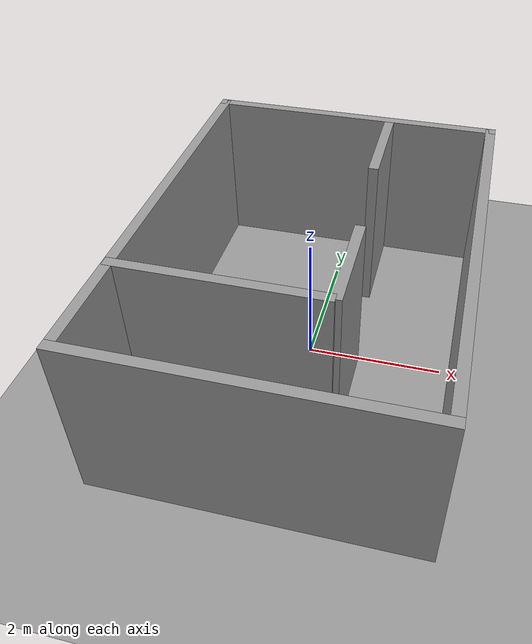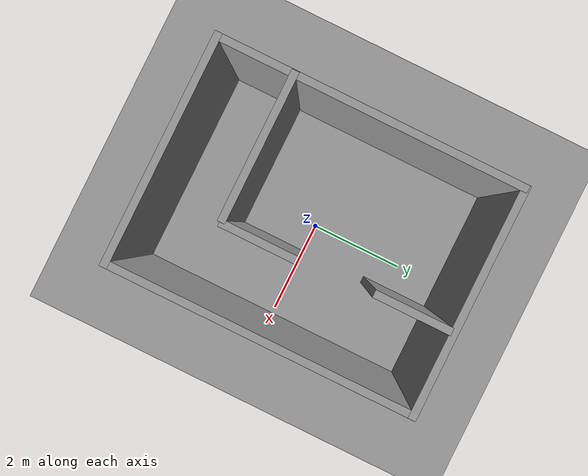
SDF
<sdf version="1.6">
 <world name="default">
  <light name="sun" type="directional">
   <pose>0 0 10 0 -0 0</pose>
   <diffuse>0.8 0.8 0.8 1</diffuse>
   <specular>0.2 0.2 0.2 1</specular>
   <attenuation>
    <range>1000</range>
    <constant>0.9</constant>
    <linear>0.01</linear>
    <quadratic>0.001</quadratic>
   </attenuation>
   <direction>0.5 0.1 -0.9</direction>
  </light>
  <scene><ambient>0.4 0.4 0.4 1</ambient><background>0.7 0.7 0.7 1</background><shadows>1</shadows></scene>
  <physics name="default_physics" default="0" type="ode">
   <max_step_size>0.01</max_step_size>
   <real_time_factor>1</real_time_factor>
   <real_time_update_rate>100</real_time_update_rate>
  </physics>
  <model name="ground_plane_0">
   <static>1</static>
   <link name="link">
    <collision name="collision">
     <geometry><plane><normal>0 0 1</normal><size>100 100</size></plane></geometry>
     <surface><friction><ode><mu>100</mu><mu2>50</mu2></ode></friction></surface>
    </collision>
    <visual name="visual">
     <cast_shadows>0</cast_shadows>
     <geometry><plane><normal>0 0 1</normal><size>100 100</size></plane></geometry>
     <material>
      <script><uri>file://media/materials/scripts/gazebo.material</uri><name>Gazebo/Grey</name></script>
     </material>
    </visual>
    <velocity_decay><linear>0</linear><angular>0</angular></velocity_decay>
   </link>
   <pose>0.5 0 0 0 -0 0</pose>
  </model>
  <gravity>0 0 -9.8</gravity>
  <magnetic_field>6e-06 2.3e-05 -4.2e-05</magnetic_field>
  <atmosphere type="adiabatic"/>
  <audio><device>default</device></audio>
  <spherical_coordinates>
   <surface_model>EARTH_WGS84</surface_model>
   <latitude_deg>0</latitude_deg>
   <longitude_deg>0</longitude_deg>
   <elevation>0</elevation>
   <heading_deg>0</heading_deg>
  </spherical_coordinates>
  <model name="project_1_walls">
   <link name="Wall_0">
    <collision name="Wall_0_Collision">
     <geometry><box><size>4.57 0.15 2.5</size></box></geometry>
     <pose>0 0 1.25 0 -0 0</pose>
    </collision>
    <visual name="Wall_0_Visual">
     <pose>0 0 1.25 0 -0 0</pose>
     <geometry><box><size>4.57 0.15 2.5</size></box></geometry>
     <material>
      <script><uri>file://media/materials/scripts/gazebo.material</uri><name>Gazebo/Grey</name></script>
      <ambient>1 1 1 1</ambient>
     </material>
     <meta><layer>0</layer></meta>
    </visual>
    <pose>0 -3 0 0 -0 0</pose>
   </link>
   <link name="Wall_10">
    <collision name="Wall_10_Collision">
     <geometry><box><size>2.95 0.15 2.5</size></box></geometry>
     <pose>0 0 1.25 0 -0 0</pose>
    </collision>
    <visual name="Wall_10_Visual">
     <pose>0 0 1.25 0 -0 0</pose>
     <geometry><box><size>2.95 0.15 2.5</size></box></geometry>
     <material>
      <script><uri>file://media/materials/scripts/gazebo.material</uri><name>Gazebo/Grey</name></script>
      <ambient>1 1 1 1</ambient>
     </material>
     <meta><layer>0</layer></meta>
    </visual>
    <pose>-0.8 -1.5 0 0 -0 0</pose>
   </link>
   <link name="Wall_12">
    <collision name="Wall_12_Collision">
     <geometry><box><size>1.52 0.15 2.5</size></box></geometry>
     <pose>0 0 1.25 0 -0 0</pose>
    </collision>
    <visual name="Wall_12_Visual">
     <pose>0 0 1.25 0 -0 0</pose>
     <geometry><box><size>1.52 0.15 2.5</size></box></geometry>
     <material>
      <script><uri>file://media/materials/scripts/gazebo.material</uri><name>Gazebo/Grey</name></script>
      <ambient>1 1 1 1</ambient>
     </material>
     <meta><layer>0</layer></meta>
    </visual>
    <pose>0.683677 -0.767863 0 0 -0 1.5708</pose>
   </link>
   <link name="Wall_14">
    <collision name="Wall_14_Collision">
     <geometry><box><size>1.52 0.15 2.5</size></box></geometry>
     <pose>0 0 1.25 0 -0 0</pose>
    </collision>
    <visual name="Wall_14_Visual">
     <pose>0 0 1.25 0 -0 0</pose>
     <geometry><box><size>1.52 0.15 2.5</size></box></geometry>
     <material>
      <script><uri>file://media/materials/scripts/gazebo.material</uri><name>Gazebo/Grey</name></script>
      <ambient>1 1 1 1</ambient>
     </material>
     <meta><layer>0</layer></meta>
    </visual>
    <pose>0.6 2.2 0 0 -0 -1.5708</pose>
   </link>
   <link name="Wall_2">
    <collision name="Wall_2_Collision">
     <geometry><box><size>6.1 0.15 2.5</size></box></geometry>
     <pose>0 0 1.25 0 -0 0</pose>
    </collision>
    <visual name="Wall_2_Visual">
     <pose>0 0 1.25 0 -0 0</pose>
     <geometry><box><size>6.1 0.15 2.5</size></box></geometry>
     <material>
      <script><uri>file://media/materials/scripts/gazebo.material</uri><name>Gazebo/Grey</name></script>
      <ambient>1 1 1 1</ambient>
     </material>
     <meta><layer>0</layer></meta>
    </visual>
    <pose>-2.21 0 0 0 -0 1.5708</pose>
   </link>
   <link name="Wall_4">
    <collision name="Wall_4_Collision">
     <geometry><box><size>4.57 0.15 2.5</size></box></geometry>
     <pose>0 0 1.25 0 -0 0</pose>
    </collision>
    <visual name="Wall_4_Visual">
     <pose>0 0 1.25 0 -0 0</pose>
     <geometry><box><size>4.57 0.15 2.5</size></box></geometry>
     <material>
      <script><uri>file://media/materials/scripts/gazebo.material</uri><name>Gazebo/Grey</name></script>
      <ambient>1 1 1 1</ambient>
     </material>
     <meta><layer>0</layer></meta>
    </visual>
    <pose>0 3 0 0 -0 0</pose>
   </link>
   <link name="Wall_6">
    <collision name="Wall_6_Collision">
     <geometry><box><size>6.1 0.15 2.5</size></box></geometry>
     <pose>0 0 1.25 0 -0 0</pose>
    </collision>
    <visual name="Wall_6_Visual">
     <pose>0 0 1.25 0 -0 0</pose>
     <geometry><box><size>6.1 0.15 2.5</size></box></geometry>
     <material>
      <script><uri>file://media/materials/scripts/gazebo.material</uri><name>Gazebo/Grey</name></script>
      <ambient>1 1 1 1</ambient>
     </material>
     <meta><layer>0</layer></meta>
    </visual>
    <pose>2.21 0 0 0 -0 -1.5708</pose>
   </link>
   <static>1</static>
  </model>
 </world>
</sdf>
